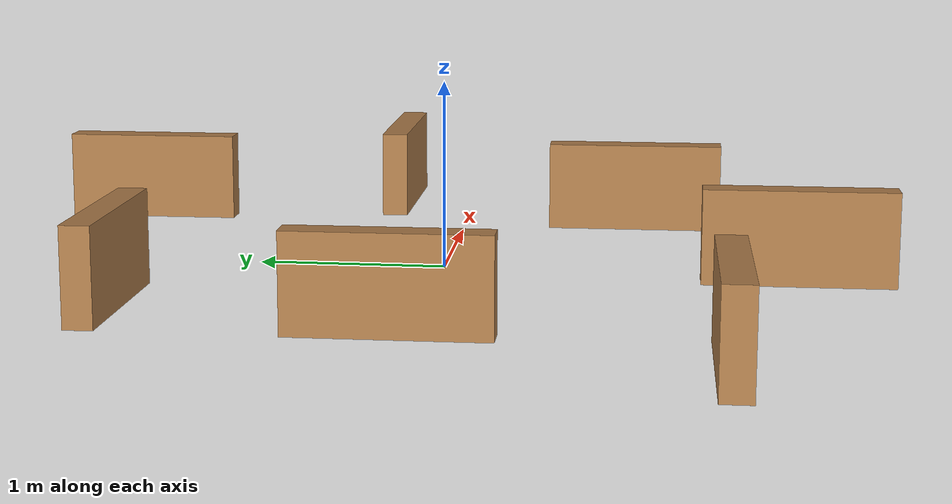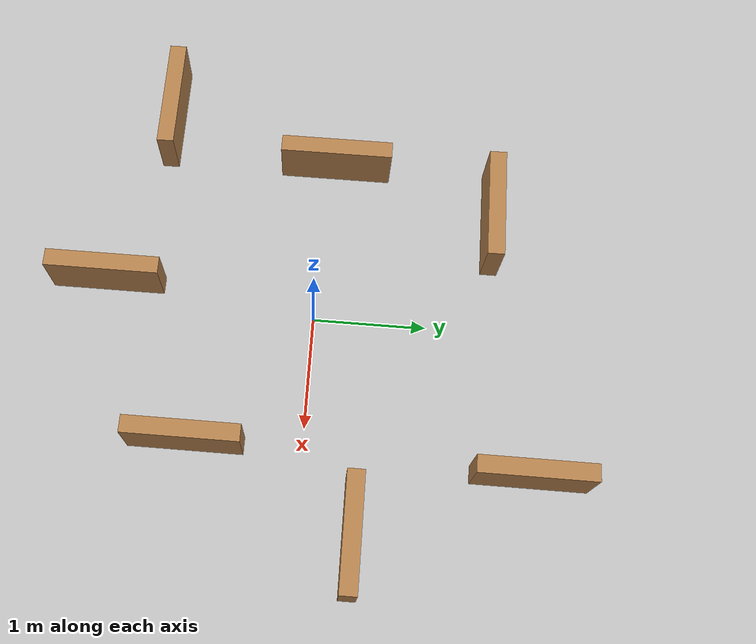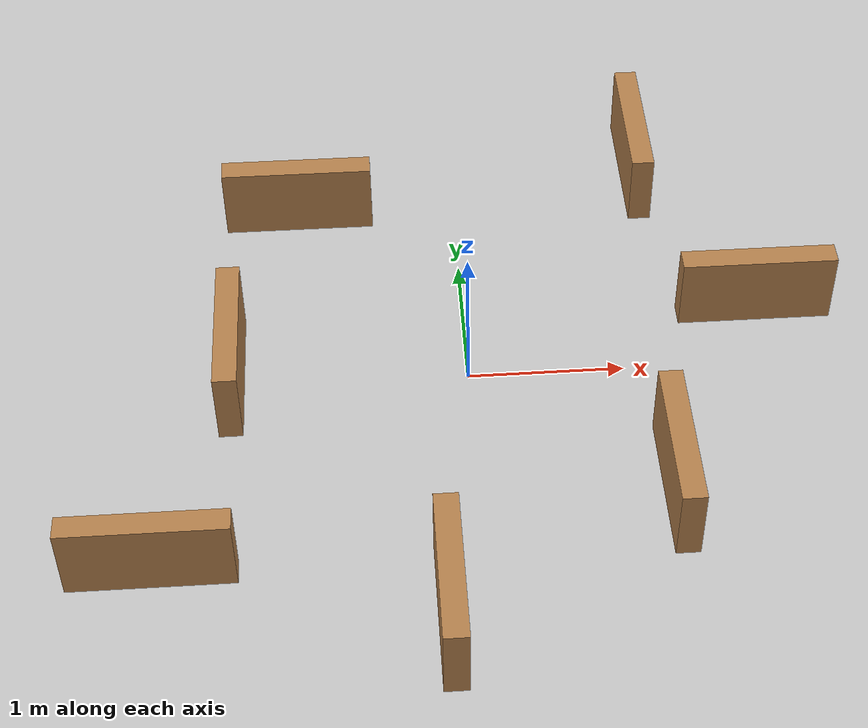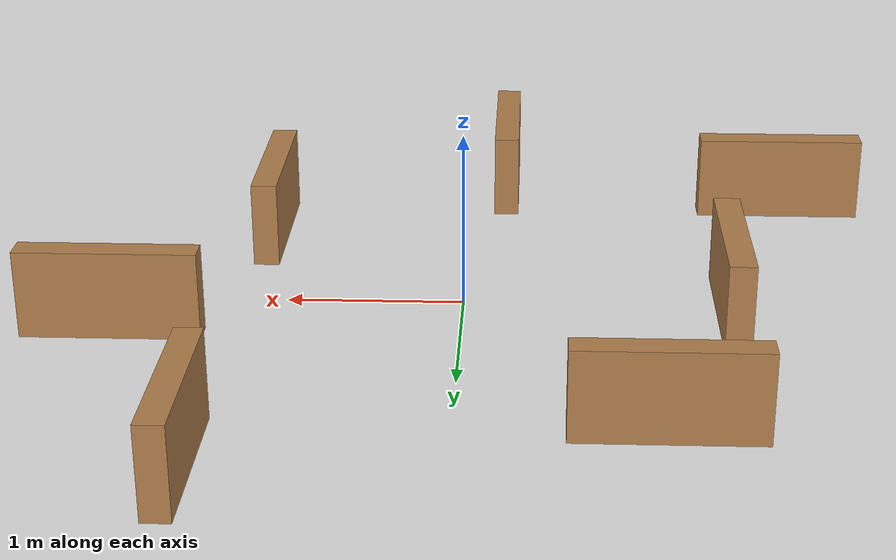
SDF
<?xml version='1.0'?>
<sdf version='1.6'>
  <model name='inner_walls'>
    <pose frame=''>0 0 0 0 0 0</pose>
    <link name='inner_wall_1'>
      <collision name='inner_wall_1_collision'>
        <geometry>
          <box>
            <size>1 0.15 0.5</size>
          </box>
        </geometry>
        <pose frame=''>0 0 0.25 0 -0 0</pose>
      </collision>
      <visual name='inner_wall_visual'>
        <pose frame=''>0 0 0.25 0 -0 0</pose>
        <geometry>
          <box>
            <size>1 0.15 0.5</size>
          </box>
        </geometry>
        <material>
          <script>
            <uri>file://media/materials/scripts/gazebo.material</uri>
            <name>Gazebo/Wood</name>
          </script>
          <ambient>1 1 1 1</ambient>
        </material>
      </visual>
      <pose frame=''>-1.937 -1.467 0 0 -0 0</pose>
    </link>
    <link name='inner_wall_2'>
      <collision name='inner_wall_2_collision'>
        <geometry>
          <box>
            <size>1 0.15 0.5</size>
          </box>
        </geometry>
        <pose frame=''>0 0 0.25 0 -0 0</pose>
      </collision>
      <visual name='inner_wall_2_visual'>
        <pose frame=''>0 0 0.25 0 -0 0</pose>
        <geometry>
          <box>
            <size>1 0.15 0.5</size>
          </box>
        </geometry>
        <material>
          <script>
            <uri>file://media/materials/scripts/gazebo.material</uri>
            <name>Gazebo/Wood</name>
          </script>
          <ambient>1 1 1 1</ambient>
        </material>
      </visual>
      <pose frame=''>-0.22 -1.866 0 0 0 -1.5708</pose>
    </link>
    <link name='inner_wall_3'>
      <collision name='inner_wall_3_collision'>
        <geometry>
          <box>
            <size>1 0.15 0.5</size>
          </box>
        </geometry>
        <pose frame=''>0 0 0.25 0 -0 0</pose>
      </collision>
      <visual name='inner_wall_3_visual'>
        <pose frame=''>0 0 0.25 0 -0 0</pose>
        <geometry>
          <box>
            <size>1 0.15 0.5</size>
          </box>
        </geometry>
        <material>
          <script>
            <uri>file://media/materials/scripts/gazebo.material</uri>
            <name>Gazebo/Wood</name>
          </script>
          <ambient>1 1 1 1</ambient>
        </material>
      </visual>
      <pose frame=''>1.195 -1.002 0 0 -0 1.5708</pose>
    </link>
    <link name='inner_wall_4'>
      <collision name='inner_wall_4_collision'>
        <geometry>
          <box>
            <size>1 0.15 0.5</size>
          </box>
        </geometry>
        <pose frame=''>0 0 0.25 0 -0 0</pose>
      </collision>
      <visual name='inner_wall_4_visual'>
        <pose frame=''>0 0 0.25 0 -0 0</pose>
        <geometry>
          <box>
            <size>1 0.15 0.5</size>
          </box>
        </geometry>
        <material>
          <script>
            <uri>file://media/materials/scripts/gazebo.material</uri>
            <name>Gazebo/Wood</name>
          </script>
          <ambient>1 1 1 1</ambient>
        </material>
      </visual>
      <pose frame=''>1.288 1.93 0 0 0 -1.5708</pose>
    </link>
    <link name='inner_wall_5'>
      <collision name='inner_wall_5_collision'>
        <geometry>
          <box>
            <size>1 0.15 0.5</size>
          </box>
        </geometry>
        <pose frame=''>0 0 0.25 0 -0 0</pose>
      </collision>
      <visual name='inner_wall_5_visual'>
        <pose frame=''>0 0 0.25 0 -0 0</pose>
        <geometry>
          <box>
            <size>1 0.15 0.5</size>
          </box>
        </geometry>
        <material>
          <script>
            <uri>file://media/materials/scripts/gazebo.material</uri>
            <name>Gazebo/Wood</name>
          </script>
          <ambient>1 1 1 1</ambient>
        </material>
      </visual>
      <pose frame=''>1.91128 0.4632 0 0 -0 0</pose>
    </link>
    <link name='inner_wall_6'>
      <collision name='inner_wall_6_collision'>
        <geometry>
          <box>
            <size>1 0.15 0.5</size>
          </box>
        </geometry>
        <pose frame=''>0 0 0.25 0 -0 0</pose>
      </collision>
      <visual name='inner_wall_6_visual'>
        <pose frame=''>0 0 0.25 0 -0 0</pose>
        <geometry>
          <box>
            <size>1 0.15 0.5</size>
          </box>
        </geometry>
        <material>
          <script>
            <uri>file://media/materials/scripts/gazebo.material</uri>
            <name>Gazebo/Wood</name>
          </script>
          <ambient>1 1 1 1</ambient>
        </material>
      </visual>
      <pose frame=''>-1.064 1.548 0 0 -0 0</pose>
    </link>
    <link name='inner_wall_7'>
      <collision name='inner_wall_7_collision'>
        <geometry>
          <box>
            <size>1 0.15 0.5</size>
          </box>
        </geometry>
        <pose frame=''>0 0 0.25 0 -0 0</pose>
      </collision>
      <visual name='inner_wall_7_visual'>
        <pose frame=''>0 0 0.25 0 -0 0</pose>
        <geometry>
          <box>
            <size>1 0.15 0.5</size>
          </box>
        </geometry>
        <material>
          <script>
            <uri>file://media/materials/scripts/gazebo.material</uri>
            <name>Gazebo/Wood</name>
          </script>
          <ambient>1 1 1 1</ambient>
        </material>
      </visual>
      <pose frame=''>-1.502 0.092 0 0 0 -1.5708</pose>
    </link>
    <static>1</static>
  </model>
</sdf>
